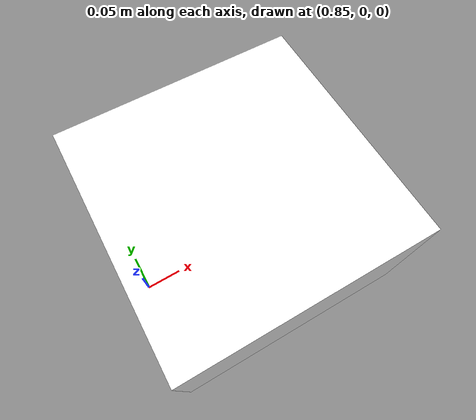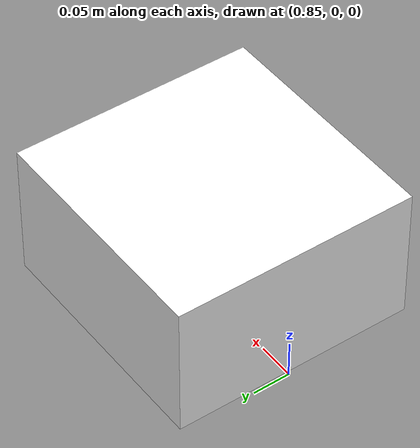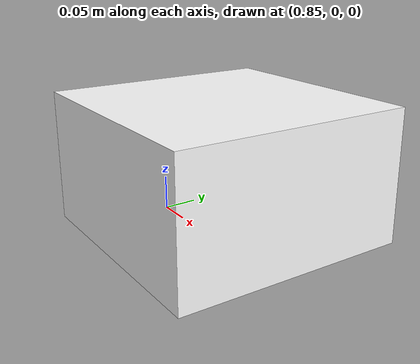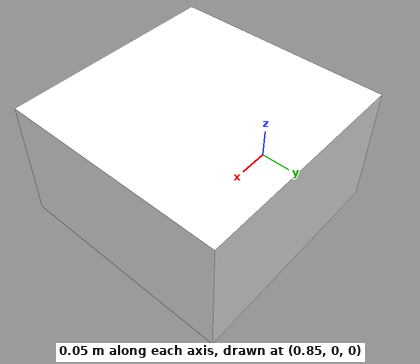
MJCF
<mujoco model="foam">
    <default>
        <geom contype="1" conaffinity="1" friction="0.8 0.8 0.8" />
    </default>

    <asset>
        <material name="white" rgba="1 1 1 1" />
    </asset>

    <worldbody>
        <body name="foam" pos="1 0 0.2">
            <freejoint name="foam_root"/>
            <geom type="box" size="0.16 0.16 0.09" pos="0 0 -0.09" material="white" mass="0.5"/>
        </body>
    </worldbody>

  <sensor>
    <framepos name="foam_pos" objtype="xbody" objname="foam"/>
    <framequat name="foam_quat" objtype="xbody" objname="foam"/>
  </sensor>
</mujoco>
